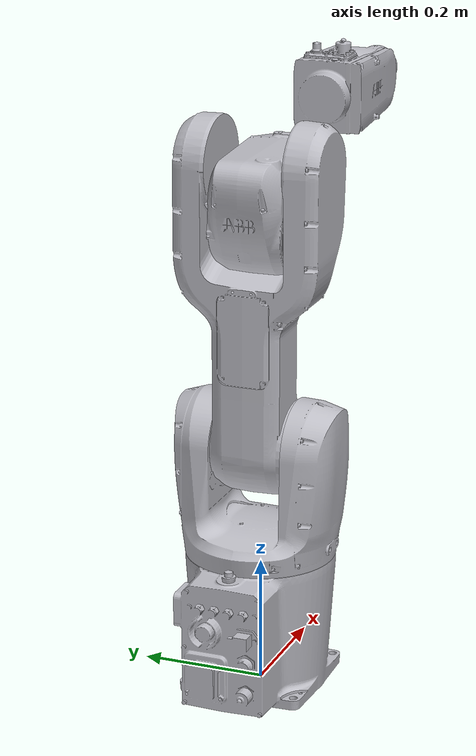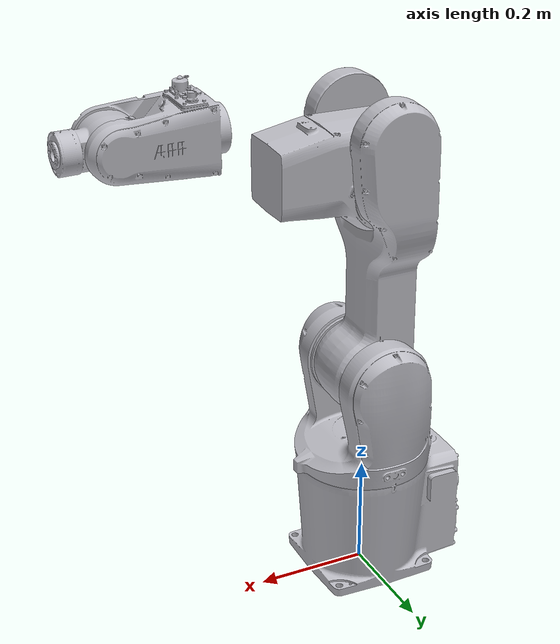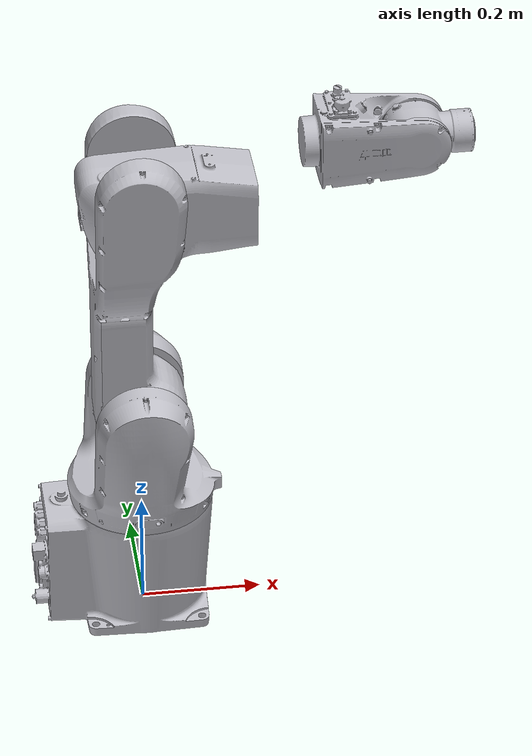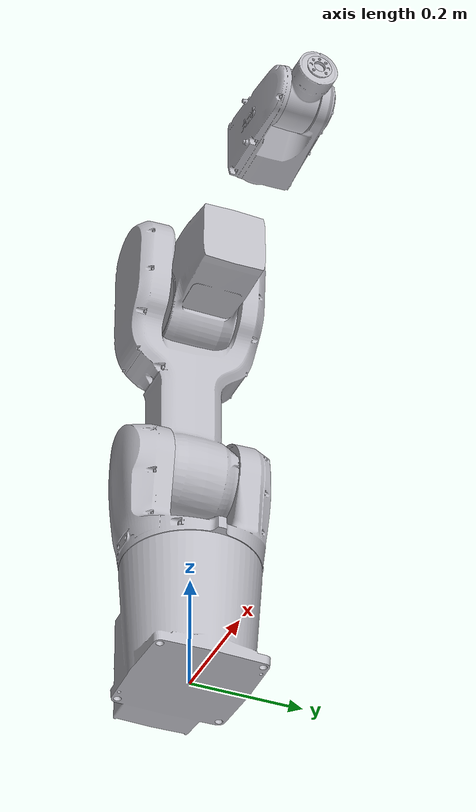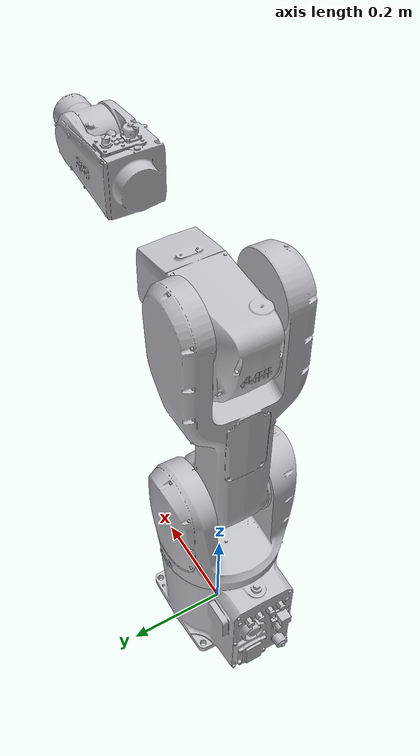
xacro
<?xml version="1.0" ?>
<robot name="IRB1200H_5-90-STD" xmlns:xacro="http://www.ros.org/wiki/xacro">

<xacro:include filename="$(find IRB1200H_5-90-STD_description)/urdf/materials.xacro" />
<xacro:include filename="$(find IRB1200H_5-90-STD_description)/urdf/IRB1200H_5-90-STD.trans" />
<xacro:include filename="$(find IRB1200H_5-90-STD_description)/urdf/IRB1200H_5-90-STD.gazebo" />
<link name="base_link">
  <inertial>
    <origin xyz="-0.023635021150547376 0.0004753411198600048 0.11218944380427551" rpy="0 0 0"/>
    <mass value="83.56281675930393"/>
    <inertia ixx="0.579272" iyy="0.781174" izz="0.698162" ixy="0.004319" iyz="-0.001283" ixz="-0.00506"/>
  </inertial>
  <visual>
    <origin xyz="0 0 0" rpy="0 0 0"/>
    <geometry>
      <mesh filename="package://IRB1200H_5-90-STD_description/meshes/base_link.stl" scale="0.001 0.001 0.001"/>
    </geometry>
    <material name="silver"/>
  </visual>
  <collision>
    <origin xyz="0 0 0" rpy="0 0 0"/>
    <geometry>
      <mesh filename="package://IRB1200H_5-90-STD_description/meshes/base_link.stl" scale="0.001 0.001 0.001"/>
    </geometry>
  </collision>
</link>

<link name="link_1_1">
  <inertial>
    <origin xyz="-0.00321441381731796 0.00043113028566128483 0.10222696949562446" rpy="0 0 0"/>
    <mass value="47.66891611618349"/>
    <inertia ixx="0.595702" iyy="0.377702" izz="0.434187" ixy="-0.000172" iyz="0.000732" ixz="-0.004245"/>
  </inertial>
  <visual>
    <origin xyz="0.0 0.0 -0.219" rpy="0 0 0"/>
    <geometry>
      <mesh filename="package://IRB1200H_5-90-STD_description/meshes/link_1_1.stl" scale="0.001 0.001 0.001"/>
    </geometry>
    <material name="silver"/>
  </visual>
  <collision>
    <origin xyz="0.0 0.0 -0.219" rpy="0 0 0"/>
    <geometry>
      <mesh filename="package://IRB1200H_5-90-STD_description/meshes/link_1_1.stl" scale="0.001 0.001 0.001"/>
    </geometry>
  </collision>
</link>

<link name="link_2_1">
  <inertial>
    <origin xyz="-0.01233108657315479 -0.061156507612509445 0.2184644524959074" rpy="0 0 0"/>
    <mass value="62.596941650298746"/>
    <inertia ixx="2.095914" iyy="1.92136" izz="0.339085" ixy="0.00046" iyz="0.0027" ixz="-0.008483"/>
  </inertial>
  <visual>
    <origin xyz="0.0 -0.06 -0.3991" rpy="0 0 0"/>
    <geometry>
      <mesh filename="package://IRB1200H_5-90-STD_description/meshes/link_2_1.stl" scale="0.001 0.001 0.001"/>
    </geometry>
    <material name="silver"/>
  </visual>
  <collision>
    <origin xyz="0.0 -0.06 -0.3991" rpy="0 0 0"/>
    <geometry>
      <mesh filename="package://IRB1200H_5-90-STD_description/meshes/link_2_1.stl" scale="0.001 0.001 0.001"/>
    </geometry>
  </collision>
</link>

<link name="link_3_1">
  <inertial>
    <origin xyz="0.09811895116802803 -0.06379568686425939 0.03502819908986721" rpy="0 0 0"/>
    <mass value="50.251919251788294"/>
    <inertia ixx="0.15986" iyy="0.614625" izz="0.56594" ixy="0.000967" iyz="0.000343" ixz="-0.040913"/>
  </inertial>
  <visual>
    <origin xyz="-0.0 -0.064 -0.8471" rpy="0 0 0"/>
    <geometry>
      <mesh filename="package://IRB1200H_5-90-STD_description/meshes/link_3_1.stl" scale="0.001 0.001 0.001"/>
    </geometry>
    <material name="silver"/>
  </visual>
  <collision>
    <origin xyz="-0.0 -0.064 -0.8471" rpy="0 0 0"/>
    <geometry>
      <mesh filename="package://IRB1200H_5-90-STD_description/meshes/link_3_1.stl" scale="0.001 0.001 0.001"/>
    </geometry>
  </collision>
</link>

<link name="link_4_1">
  <inertial>
    <origin xyz="0.07074254364387844 0.0016278688336306337 0.0016065194252506965" rpy="0 0 0"/>
    <mass value="14.103086555281287"/>
    <inertia ixx="0.029391" iyy="0.05769" izz="0.061943" ixy="-0.001377" iyz="-1e-05" ixz="0.000485"/>
  </inertial>
  <visual>
    <origin xyz="-0.2885 -0.0 -0.888589" rpy="0 0 0"/>
    <geometry>
      <mesh filename="package://IRB1200H_5-90-STD_description/meshes/link_4_1.stl" scale="0.001 0.001 0.001"/>
    </geometry>
    <material name="silver"/>
  </visual>
  <collision>
    <origin xyz="-0.2885 -0.0 -0.888589" rpy="0 0 0"/>
    <geometry>
      <mesh filename="package://IRB1200H_5-90-STD_description/meshes/link_4_1.stl" scale="0.001 0.001 0.001"/>
    </geometry>
  </collision>
</link>

<link name="link_5_1">
  <inertial>
    <origin xyz="0.013857332914444742 -0.027942297667688586 6.637616500093646e-05" rpy="0 0 0"/>
    <mass value="4.542326712154526"/>
    <inertia ixx="0.003479" iyy="0.008928" izz="0.007834" ixy="-0.000177" iyz="-4e-06" ixz="1.2e-05"/>
  </inertial>
  <visual>
    <origin xyz="-0.450991 -0.0255 -0.8891" rpy="0 0 0"/>
    <geometry>
      <mesh filename="package://IRB1200H_5-90-STD_description/meshes/link_5_1.stl" scale="0.001 0.001 0.001"/>
    </geometry>
    <material name="silver"/>
  </visual>
  <collision>
    <origin xyz="-0.450991 -0.0255 -0.8891" rpy="0 0 0"/>
    <geometry>
      <mesh filename="package://IRB1200H_5-90-STD_description/meshes/link_5_1.stl" scale="0.001 0.001 0.001"/>
    </geometry>
  </collision>
</link>

<link name="link_6_1">
  <inertial>
    <origin xyz="0.002845713618856882 7.306126168841773e-08 -0.0003669972967227375" rpy="0 0 0"/>
    <mass value="0.03668180966446797"/>
    <inertia ixx="1e-05" iyy="5e-06" izz="5e-06" ixy="0.0" iyz="-0.0" ixz="-0.0"/>
  </inertial>
  <visual>
    <origin xyz="-0.5365 1.4e-05 -0.889112" rpy="0 0 0"/>
    <geometry>
      <mesh filename="package://IRB1200H_5-90-STD_description/meshes/link_6_1.stl" scale="0.001 0.001 0.001"/>
    </geometry>
    <material name="silver"/>
  </visual>
  <collision>
    <origin xyz="-0.5365 1.4e-05 -0.889112" rpy="0 0 0"/>
    <geometry>
      <mesh filename="package://IRB1200H_5-90-STD_description/meshes/link_6_1.stl" scale="0.001 0.001 0.001"/>
    </geometry>
  </collision>
</link>

<joint name="j1" type="continuous">
  <origin xyz="0.0 0.0 0.219" rpy="0 0 0"/>
  <parent link="base_link"/>
  <child link="link_1_1"/>
  <axis xyz="0.0 0.0 -1.0"/>
</joint>

<joint name="j2" type="continuous">
  <origin xyz="0.0 0.06 0.1801" rpy="0 0 0"/>
  <parent link="link_1_1"/>
  <child link="link_2_1"/>
  <axis xyz="0.0 -1.0 0.0"/>
</joint>

<joint name="j3" type="continuous">
  <origin xyz="0.0 0.004 0.448" rpy="0 0 0"/>
  <parent link="link_2_1"/>
  <child link="link_3_1"/>
  <axis xyz="0.0 -1.0 0.0"/>
</joint>

<joint name="j4" type="continuous">
  <origin xyz="0.2885 -0.064 0.041489" rpy="0 0 0"/>
  <parent link="link_3_1"/>
  <child link="link_4_1"/>
  <axis xyz="1.0 0.0 0.0"/>
</joint>

<joint name="j5" type="continuous">
  <origin xyz="0.162491 0.0255 0.000511" rpy="0 0 0"/>
  <parent link="link_4_1"/>
  <child link="link_5_1"/>
  <axis xyz="0.0 -1.0 0.0"/>
</joint>

<joint name="j6" type="continuous">
  <origin xyz="0.085509 -0.025514 1.2e-05" rpy="0 0 0"/>
  <parent link="link_5_1"/>
  <child link="link_6_1"/>
  <axis xyz="1.0 0.0 0.0"/>
</joint>

</robot>
